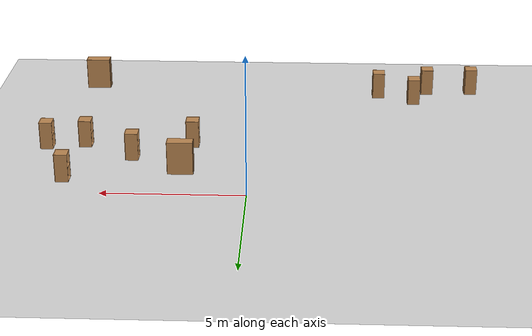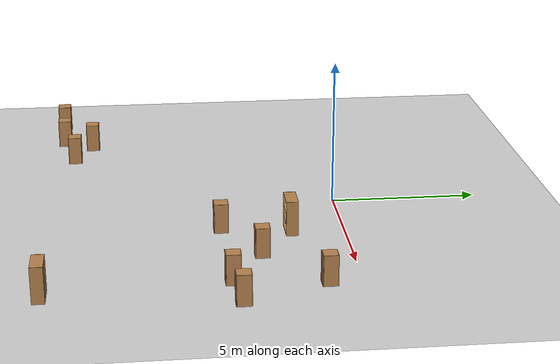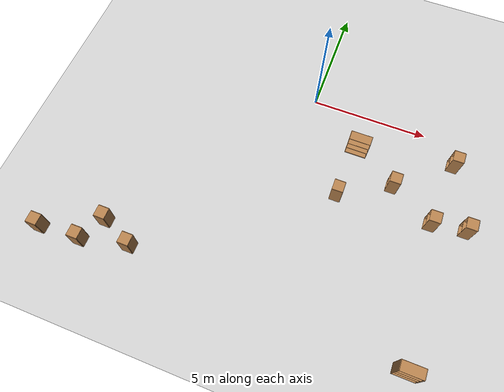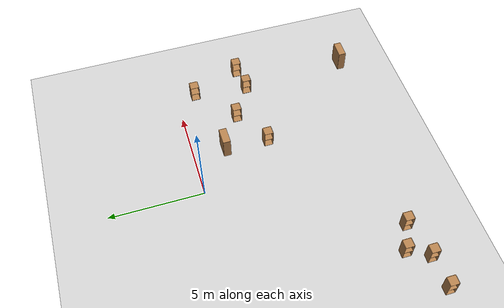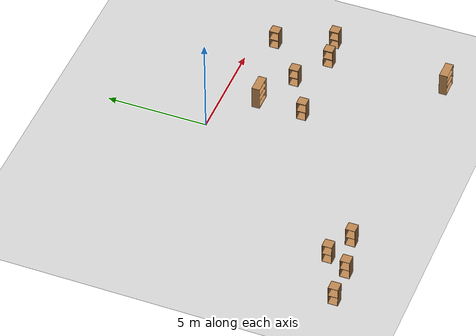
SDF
<sdf version="1.6">
 <world name="default">
  <model name="ground_plane">
   <static>1</static>
   <link name="link">
    <collision name="collision">
     <geometry><plane><normal>0 0 1</normal><size>100 100</size></plane></geometry>
     <surface><friction><ode><mu>100</mu><mu2>50</mu2></ode></friction></surface>
    </collision>
    <visual name="visual">
     <cast_shadows>0</cast_shadows>
     <geometry><plane><normal>0 0 1</normal><size>100 100</size></plane></geometry>
     <material>
      <script><uri>file://media/materials/scripts/gazebo.material</uri><name>Gazebo/Grey</name></script>
     </material>
    </visual>
   </link>
  </model>
  <model name="bookshelf_10">
   <static>1</static>
   <link name="link">
    <inertial><mass>1</mass></inertial>
    <collision name="back">
     <pose>0 0.005 0.6 0 -0 0</pose>
     <geometry><box><size>0.9 0.01 1.2</size></box></geometry>
    </collision>
    <visual name="visual1">
     <pose>0 0.005 0.6 0 -0 0</pose>
     <geometry><box><size>0.9 0.01 1.2</size></box></geometry>
     <material>
      <script><uri>file://media/materials/scripts/gazebo.material</uri><name>Gazebo/Wood</name></script>
     </material>
    </visual>
    <collision name="left_side">
     <pose>0.45 -0.195 0.6 0 -0 0</pose>
     <geometry><box><size>0.02 0.4 1.2</size></box></geometry>
    </collision>
    <visual name="visual2">
     <pose>0.45 -0.195 0.6 0 -0 0</pose>
     <geometry><box><size>0.02 0.4 1.2</size></box></geometry>
     <material>
      <script><uri>file://media/materials/scripts/gazebo.material</uri><name>Gazebo/Wood</name></script>
     </material>
    </visual>
    <collision name="right_side">
     <pose>-0.45 -0.195 0.6 0 -0 0</pose>
     <geometry><box><size>0.02 0.4 1.2</size></box></geometry>
    </collision>
    <visual name="visual3">
     <pose>-0.45 -0.195 0.6 0 -0 0</pose>
     <geometry><box><size>0.02 0.4 1.2</size></box></geometry>
     <material>
      <script><uri>file://media/materials/scripts/gazebo.material</uri><name>Gazebo/Wood</name></script>
     </material>
    </visual>
    <collision name="bottom">
     <pose>0 -0.195 0.03 0 -0 0</pose>
     <geometry><box><size>0.88 0.4 0.06</size></box></geometry>
    </collision>
    <visual name="visual4">
     <pose>0 -0.195 0.03 0 -0 0</pose>
     <geometry><box><size>0.88 0.4 0.06</size></box></geometry>
     <material>
      <script><uri>file://media/materials/scripts/gazebo.material</uri><name>Gazebo/Wood</name></script>
     </material>
    </visual>
    <collision name="top">
     <pose>0 -0.195 1.19 0 -0 0</pose>
     <geometry><box><size>0.88 0.4 0.02</size></box></geometry>
    </collision>
    <visual name="visual5">
     <pose>0 -0.195 1.19 0 -0 0</pose>
     <geometry><box><size>0.88 0.4 0.02</size></box></geometry>
     <material>
      <script><uri>file://media/materials/scripts/gazebo.material</uri><name>Gazebo/Wood</name></script>
     </material>
    </visual>
    <collision name="low_shelf">
     <pose>0 -0.195 0.43 0 -0 0</pose>
     <geometry><box><size>0.88 0.4 0.02</size></box></geometry>
    </collision>
    <visual name="visual6">
     <pose>0 -0.195 0.43 0 -0 0</pose>
     <geometry><box><size>0.88 0.4 0.02</size></box></geometry>
     <material>
      <script><uri>file://media/materials/scripts/gazebo.material</uri><name>Gazebo/Wood</name></script>
     </material>
    </visual>
    <collision name="high_shelf">
     <pose>0 -0.195 0.8 0 -0 0</pose>
     <geometry><box><size>0.88 0.4 0.02</size></box></geometry>
    </collision>
    <visual name="visual7">
     <pose>0 -0.195 0.8 0 -0 0</pose>
     <geometry><box><size>0.88 0.4 0.02</size></box></geometry>
     <material>
      <script><uri>file://media/materials/scripts/gazebo.material</uri><name>Gazebo/Wood</name></script>
     </material>
    </visual>
   </link>
   <pose>2.40634 -1.57691 0 0 -0 0</pose>
  </model>
  <model name="cabinet_4">
   <static>1</static>
   <link name="cabinet_bottom_plate">
    <inertial>
     <pose>0 0 -1 0 -0 0</pose>
     <inertia><ixx>2.05</ixx><ixy>0</ixy><ixz>0</ixz><iyy>2.05</iyy><iyz>0</iyz><izz>2.05</izz></inertia>
     <mass>25</mass>
    </inertial>
    <collision name="cabinet_bottom_plate_geom">
     <pose>0 0 0.01 0 -0 0</pose>
     <geometry><box><size>0.45 0.45 0.02</size></box></geometry>
    </collision>
    <visual name="cabinet_bottom_plate_geom_visual">
     <pose>0 0 0.01 0 -0 0</pose>
     <geometry><box><size>0.45 0.45 0.02</size></box></geometry>
     <material>
      <script><uri>file://media/materials/scripts/gazebo.material</uri><name>Gazebo/Wood</name></script>
     </material>
    </visual>
    <collision name="cabinet_bottom_plate_geom_cabinet_back_plate">
     <pose>0.235 0 0.51 0 -0 0</pose>
     <geometry><box><size>0.02 0.45 1.02</size></box></geometry>
    </collision>
    <visual name="cabinet_bottom_plate_geom_cabinet_back_plate_visual">
     <pose>0.235 0 0.51 0 -0 0</pose>
     <geometry><box><size>0.02 0.45 1.02</size></box></geometry>
     <material>
      <script><uri>file://media/materials/scripts/gazebo.material</uri><name>Gazebo/Wood</name></script>
     </material>
    </visual>
    <collision name="cabinet_bottom_plate_geom_cabinet_left_plate">
     <pose>0 0.235 0.51 0 -0 0</pose>
     <geometry><box><size>0.45 0.02 1.02</size></box></geometry>
    </collision>
    <visual name="cabinet_bottom_plate_geom_cabinet_left_plate_visual">
     <pose>0 0.235 0.51 0 -0 0</pose>
     <geometry><box><size>0.45 0.02 1.02</size></box></geometry>
     <material>
      <script><uri>file://media/materials/scripts/gazebo.material</uri><name>Gazebo/Wood</name></script>
     </material>
    </visual>
    <collision name="cabinet_bottom_plate_geom_cabinet_middle_plate">
     <pose>0 0 0.51 0 -0 0</pose>
     <geometry><box><size>0.45 0.45 0.02</size></box></geometry>
    </collision>
    <visual name="cabinet_bottom_plate_geom_cabinet_middle_plate_visual">
     <pose>0 0 0.51 0 -0 0</pose>
     <geometry><box><size>0.45 0.45 0.02</size></box></geometry>
     <material>
      <script><uri>file://media/materials/scripts/gazebo.material</uri><name>Gazebo/Wood</name></script>
     </material>
    </visual>
    <collision name="cabinet_bottom_plate_geom_cabinet_right_plate">
     <pose>0 -0.235 0.51 0 -0 0</pose>
     <geometry><box><size>0.45 0.02 1.02</size></box></geometry>
    </collision>
    <visual name="cabinet_bottom_plate_geom_cabinet_right_plate_visual">
     <pose>0 -0.235 0.51 0 -0 0</pose>
     <geometry><box><size>0.45 0.02 1.02</size></box></geometry>
     <material>
      <script><uri>file://media/materials/scripts/gazebo.material</uri><name>Gazebo/Wood</name></script>
     </material>
    </visual>
    <collision name="cabinet_bottom_plate_geom_cabinet_top_plate">
     <pose>0 0 1.01 0 -0 0</pose>
     <geometry><box><size>0.45 0.45 0.02</size></box></geometry>
    </collision>
    <visual name="cabinet_bottom_plate_geom_cabinet_top_plate_visual">
     <pose>0 0 1.01 0 -0 0</pose>
     <geometry><box><size>0.45 0.45 0.02</size></box></geometry>
     <material>
      <script><uri>file://media/materials/scripts/gazebo.material</uri><name>Gazebo/Wood</name></script>
     </material>
    </visual>
   </link>
   <pose>2.17512 -4.07654 0 0 -0 0</pose>
  </model>
  <model name="bookshelf_11">
   <static>1</static>
   <link name="link">
    <inertial><mass>1</mass></inertial>
    <collision name="back">
     <pose>0 0.005 0.6 0 -0 0</pose>
     <geometry><box><size>0.9 0.01 1.2</size></box></geometry>
    </collision>
    <visual name="visual1">
     <pose>0 0.005 0.6 0 -0 0</pose>
     <geometry><box><size>0.9 0.01 1.2</size></box></geometry>
     <material>
      <script><uri>file://media/materials/scripts/gazebo.material</uri><name>Gazebo/Wood</name></script>
     </material>
    </visual>
    <collision name="left_side">
     <pose>0.45 -0.195 0.6 0 -0 0</pose>
     <geometry><box><size>0.02 0.4 1.2</size></box></geometry>
    </collision>
    <visual name="visual2">
     <pose>0.45 -0.195 0.6 0 -0 0</pose>
     <geometry><box><size>0.02 0.4 1.2</size></box></geometry>
     <material>
      <script><uri>file://media/materials/scripts/gazebo.material</uri><name>Gazebo/Wood</name></script>
     </material>
    </visual>
    <collision name="right_side">
     <pose>-0.45 -0.195 0.6 0 -0 0</pose>
     <geometry><box><size>0.02 0.4 1.2</size></box></geometry>
    </collision>
    <visual name="visual3">
     <pose>-0.45 -0.195 0.6 0 -0 0</pose>
     <geometry><box><size>0.02 0.4 1.2</size></box></geometry>
     <material>
      <script><uri>file://media/materials/scripts/gazebo.material</uri><name>Gazebo/Wood</name></script>
     </material>
    </visual>
    <collision name="bottom">
     <pose>0 -0.195 0.03 0 -0 0</pose>
     <geometry><box><size>0.88 0.4 0.06</size></box></geometry>
    </collision>
    <visual name="visual4">
     <pose>0 -0.195 0.03 0 -0 0</pose>
     <geometry><box><size>0.88 0.4 0.06</size></box></geometry>
     <material>
      <script><uri>file://media/materials/scripts/gazebo.material</uri><name>Gazebo/Wood</name></script>
     </material>
    </visual>
    <collision name="top">
     <pose>0 -0.195 1.19 0 -0 0</pose>
     <geometry><box><size>0.88 0.4 0.02</size></box></geometry>
    </collision>
    <visual name="visual5">
     <pose>0 -0.195 1.19 0 -0 0</pose>
     <geometry><box><size>0.88 0.4 0.02</size></box></geometry>
     <material>
      <script><uri>file://media/materials/scripts/gazebo.material</uri><name>Gazebo/Wood</name></script>
     </material>
    </visual>
    <collision name="low_shelf">
     <pose>0 -0.195 0.43 0 -0 0</pose>
     <geometry><box><size>0.88 0.4 0.02</size></box></geometry>
    </collision>
    <visual name="visual6">
     <pose>0 -0.195 0.43 0 -0 0</pose>
     <geometry><box><size>0.88 0.4 0.02</size></box></geometry>
     <material>
      <script><uri>file://media/materials/scripts/gazebo.material</uri><name>Gazebo/Wood</name></script>
     </material>
    </visual>
    <collision name="high_shelf">
     <pose>0 -0.195 0.8 0 -0 0</pose>
     <geometry><box><size>0.88 0.4 0.02</size></box></geometry>
    </collision>
    <visual name="visual7">
     <pose>0 -0.195 0.8 0 -0 0</pose>
     <geometry><box><size>0.88 0.4 0.02</size></box></geometry>
     <material>
      <script><uri>file://media/materials/scripts/gazebo.material</uri><name>Gazebo/Wood</name></script>
     </material>
    </visual>
   </link>
   <pose>6.50405 -9.58021 0 0 -0 0</pose>
  </model>
  <model name="cabinet_5">
   <static>1</static>
   <link name="cabinet_bottom_plate">
    <inertial>
     <pose>0 0 -1 0 -0 0</pose>
     <inertia><ixx>2.05</ixx><ixy>0</ixy><ixz>0</ixz><iyy>2.05</iyy><iyz>0</iyz><izz>2.05</izz></inertia>
     <mass>25</mass>
    </inertial>
    <collision name="cabinet_bottom_plate_geom">
     <pose>0 0 0.01 0 -0 0</pose>
     <geometry><box><size>0.45 0.45 0.02</size></box></geometry>
    </collision>
    <visual name="cabinet_bottom_plate_geom_visual">
     <pose>0 0 0.01 0 -0 0</pose>
     <geometry><box><size>0.45 0.45 0.02</size></box></geometry>
     <material>
      <script><uri>file://media/materials/scripts/gazebo.material</uri><name>Gazebo/Wood</name></script>
     </material>
    </visual>
    <collision name="cabinet_bottom_plate_geom_cabinet_back_plate">
     <pose>0.235 0 0.51 0 -0 0</pose>
     <geometry><box><size>0.02 0.45 1.02</size></box></geometry>
    </collision>
    <visual name="cabinet_bottom_plate_geom_cabinet_back_plate_visual">
     <pose>0.235 0 0.51 0 -0 0</pose>
     <geometry><box><size>0.02 0.45 1.02</size></box></geometry>
     <material>
      <script><uri>file://media/materials/scripts/gazebo.material</uri><name>Gazebo/Wood</name></script>
     </material>
    </visual>
    <collision name="cabinet_bottom_plate_geom_cabinet_left_plate">
     <pose>0 0.235 0.51 0 -0 0</pose>
     <geometry><box><size>0.45 0.02 1.02</size></box></geometry>
    </collision>
    <visual name="cabinet_bottom_plate_geom_cabinet_left_plate_visual">
     <pose>0 0.235 0.51 0 -0 0</pose>
     <geometry><box><size>0.45 0.02 1.02</size></box></geometry>
     <material>
      <script><uri>file://media/materials/scripts/gazebo.material</uri><name>Gazebo/Wood</name></script>
     </material>
    </visual>
    <collision name="cabinet_bottom_plate_geom_cabinet_middle_plate">
     <pose>0 0 0.51 0 -0 0</pose>
     <geometry><box><size>0.45 0.45 0.02</size></box></geometry>
    </collision>
    <visual name="cabinet_bottom_plate_geom_cabinet_middle_plate_visual">
     <pose>0 0 0.51 0 -0 0</pose>
     <geometry><box><size>0.45 0.45 0.02</size></box></geometry>
     <material>
      <script><uri>file://media/materials/scripts/gazebo.material</uri><name>Gazebo/Wood</name></script>
     </material>
    </visual>
    <collision name="cabinet_bottom_plate_geom_cabinet_right_plate">
     <pose>0 -0.235 0.51 0 -0 0</pose>
     <geometry><box><size>0.45 0.02 1.02</size></box></geometry>
    </collision>
    <visual name="cabinet_bottom_plate_geom_cabinet_right_plate_visual">
     <pose>0 -0.235 0.51 0 -0 0</pose>
     <geometry><box><size>0.45 0.02 1.02</size></box></geometry>
     <material>
      <script><uri>file://media/materials/scripts/gazebo.material</uri><name>Gazebo/Wood</name></script>
     </material>
    </visual>
    <collision name="cabinet_bottom_plate_geom_cabinet_top_plate">
     <pose>0 0 1.01 0 -0 0</pose>
     <geometry><box><size>0.45 0.45 0.02</size></box></geometry>
    </collision>
    <visual name="cabinet_bottom_plate_geom_cabinet_top_plate_visual">
     <pose>0 0 1.01 0 -0 0</pose>
     <geometry><box><size>0.45 0.45 0.02</size></box></geometry>
     <material>
      <script><uri>file://media/materials/scripts/gazebo.material</uri><name>Gazebo/Wood</name></script>
     </material>
    </visual>
   </link>
   <pose>6.41517 -1.06172 0 0 -0 0</pose>
  </model>
  <model name="cabinet_6">
   <static>1</static>
   <link name="cabinet_bottom_plate">
    <inertial>
     <pose>0 0 -1 0 -0 0</pose>
     <inertia><ixx>2.05</ixx><ixy>0</ixy><ixz>0</ixz><iyy>2.05</iyy><iyz>0</iyz><izz>2.05</izz></inertia>
     <mass>25</mass>
    </inertial>
    <collision name="cabinet_bottom_plate_geom">
     <pose>0 0 0.01 0 -0 0</pose>
     <geometry><box><size>0.45 0.45 0.02</size></box></geometry>
    </collision>
    <visual name="cabinet_bottom_plate_geom_visual">
     <pose>0 0 0.01 0 -0 0</pose>
     <geometry><box><size>0.45 0.45 0.02</size></box></geometry>
     <material>
      <script><uri>file://media/materials/scripts/gazebo.material</uri><name>Gazebo/Wood</name></script>
     </material>
    </visual>
    <collision name="cabinet_bottom_plate_geom_cabinet_back_plate">
     <pose>0.235 0 0.51 0 -0 0</pose>
     <geometry><box><size>0.02 0.45 1.02</size></box></geometry>
    </collision>
    <visual name="cabinet_bottom_plate_geom_cabinet_back_plate_visual">
     <pose>0.235 0 0.51 0 -0 0</pose>
     <geometry><box><size>0.02 0.45 1.02</size></box></geometry>
     <material>
      <script><uri>file://media/materials/scripts/gazebo.material</uri><name>Gazebo/Wood</name></script>
     </material>
    </visual>
    <collision name="cabinet_bottom_plate_geom_cabinet_left_plate">
     <pose>0 0.235 0.51 0 -0 0</pose>
     <geometry><box><size>0.45 0.02 1.02</size></box></geometry>
    </collision>
    <visual name="cabinet_bottom_plate_geom_cabinet_left_plate_visual">
     <pose>0 0.235 0.51 0 -0 0</pose>
     <geometry><box><size>0.45 0.02 1.02</size></box></geometry>
     <material>
      <script><uri>file://media/materials/scripts/gazebo.material</uri><name>Gazebo/Wood</name></script>
     </material>
    </visual>
    <collision name="cabinet_bottom_plate_geom_cabinet_middle_plate">
     <pose>0 0 0.51 0 -0 0</pose>
     <geometry><box><size>0.45 0.45 0.02</size></box></geometry>
    </collision>
    <visual name="cabinet_bottom_plate_geom_cabinet_middle_plate_visual">
     <pose>0 0 0.51 0 -0 0</pose>
     <geometry><box><size>0.45 0.45 0.02</size></box></geometry>
     <material>
      <script><uri>file://media/materials/scripts/gazebo.material</uri><name>Gazebo/Wood</name></script>
     </material>
    </visual>
    <collision name="cabinet_bottom_plate_geom_cabinet_right_plate">
     <pose>0 -0.235 0.51 0 -0 0</pose>
     <geometry><box><size>0.45 0.02 1.02</size></box></geometry>
    </collision>
    <visual name="cabinet_bottom_plate_geom_cabinet_right_plate_visual">
     <pose>0 -0.235 0.51 0 -0 0</pose>
     <geometry><box><size>0.45 0.02 1.02</size></box></geometry>
     <material>
      <script><uri>file://media/materials/scripts/gazebo.material</uri><name>Gazebo/Wood</name></script>
     </material>
    </visual>
    <collision name="cabinet_bottom_plate_geom_cabinet_top_plate">
     <pose>0 0 1.01 0 -0 0</pose>
     <geometry><box><size>0.45 0.45 0.02</size></box></geometry>
    </collision>
    <visual name="cabinet_bottom_plate_geom_cabinet_top_plate_visual">
     <pose>0 0 1.01 0 -0 0</pose>
     <geometry><box><size>0.45 0.45 0.02</size></box></geometry>
     <material>
      <script><uri>file://media/materials/scripts/gazebo.material</uri><name>Gazebo/Wood</name></script>
     </material>
    </visual>
   </link>
   <pose>4.23876 -2.90278 0 0 -0 0</pose>
  </model>
  <model name="cabinet_7">
   <static>1</static>
   <link name="cabinet_bottom_plate">
    <inertial>
     <pose>0 0 -1 0 -0 0</pose>
     <inertia><ixx>2.05</ixx><ixy>0</ixy><ixz>0</ixz><iyy>2.05</iyy><iyz>0</iyz><izz>2.05</izz></inertia>
     <mass>25</mass>
    </inertial>
    <collision name="cabinet_bottom_plate_geom">
     <pose>0 0 0.01 0 -0 0</pose>
     <geometry><box><size>0.45 0.45 0.02</size></box></geometry>
    </collision>
    <visual name="cabinet_bottom_plate_geom_visual">
     <pose>0 0 0.01 0 -0 0</pose>
     <geometry><box><size>0.45 0.45 0.02</size></box></geometry>
     <material>
      <script><uri>file://media/materials/scripts/gazebo.material</uri><name>Gazebo/Wood</name></script>
     </material>
    </visual>
    <collision name="cabinet_bottom_plate_geom_cabinet_back_plate">
     <pose>0.235 0 0.51 0 -0 0</pose>
     <geometry><box><size>0.02 0.45 1.02</size></box></geometry>
    </collision>
    <visual name="cabinet_bottom_plate_geom_cabinet_back_plate_visual">
     <pose>0.235 0 0.51 0 -0 0</pose>
     <geometry><box><size>0.02 0.45 1.02</size></box></geometry>
     <material>
      <script><uri>file://media/materials/scripts/gazebo.material</uri><name>Gazebo/Wood</name></script>
     </material>
    </visual>
    <collision name="cabinet_bottom_plate_geom_cabinet_left_plate">
     <pose>0 0.235 0.51 0 -0 0</pose>
     <geometry><box><size>0.45 0.02 1.02</size></box></geometry>
    </collision>
    <visual name="cabinet_bottom_plate_geom_cabinet_left_plate_visual">
     <pose>0 0.235 0.51 0 -0 0</pose>
     <geometry><box><size>0.45 0.02 1.02</size></box></geometry>
     <material>
      <script><uri>file://media/materials/scripts/gazebo.material</uri><name>Gazebo/Wood</name></script>
     </material>
    </visual>
    <collision name="cabinet_bottom_plate_geom_cabinet_middle_plate">
     <pose>0 0 0.51 0 -0 0</pose>
     <geometry><box><size>0.45 0.45 0.02</size></box></geometry>
    </collision>
    <visual name="cabinet_bottom_plate_geom_cabinet_middle_plate_visual">
     <pose>0 0 0.51 0 -0 0</pose>
     <geometry><box><size>0.45 0.45 0.02</size></box></geometry>
     <material>
      <script><uri>file://media/materials/scripts/gazebo.material</uri><name>Gazebo/Wood</name></script>
     </material>
    </visual>
    <collision name="cabinet_bottom_plate_geom_cabinet_right_plate">
     <pose>0 -0.235 0.51 0 -0 0</pose>
     <geometry><box><size>0.45 0.02 1.02</size></box></geometry>
    </collision>
    <visual name="cabinet_bottom_plate_geom_cabinet_right_plate_visual">
     <pose>0 -0.235 0.51 0 -0 0</pose>
     <geometry><box><size>0.45 0.02 1.02</size></box></geometry>
     <material>
      <script><uri>file://media/materials/scripts/gazebo.material</uri><name>Gazebo/Wood</name></script>
     </material>
    </visual>
    <collision name="cabinet_bottom_plate_geom_cabinet_top_plate">
     <pose>0 0 1.01 0 -0 0</pose>
     <geometry><box><size>0.45 0.45 0.02</size></box></geometry>
    </collision>
    <visual name="cabinet_bottom_plate_geom_cabinet_top_plate_visual">
     <pose>0 0 1.01 0 -0 0</pose>
     <geometry><box><size>0.45 0.45 0.02</size></box></geometry>
     <material>
      <script><uri>file://media/materials/scripts/gazebo.material</uri><name>Gazebo/Wood</name></script>
     </material>
    </visual>
   </link>
   <pose>7.46865 -3.76816 0 0 -0 0</pose>
  </model>
  <model name="cabinet_8">
   <static>1</static>
   <link name="cabinet_bottom_plate">
    <inertial>
     <pose>0 0 -1 0 -0 0</pose>
     <inertia><ixx>2.05</ixx><ixy>0</ixy><ixz>0</ixz><iyy>2.05</iyy><iyz>0</iyz><izz>2.05</izz></inertia>
     <mass>25</mass>
    </inertial>
    <collision name="cabinet_bottom_plate_geom">
     <pose>0 0 0.01 0 -0 0</pose>
     <geometry><box><size>0.45 0.45 0.02</size></box></geometry>
    </collision>
    <visual name="cabinet_bottom_plate_geom_visual">
     <pose>0 0 0.01 0 -0 0</pose>
     <geometry><box><size>0.45 0.45 0.02</size></box></geometry>
     <material>
      <script><uri>file://media/materials/scripts/gazebo.material</uri><name>Gazebo/Wood</name></script>
     </material>
    </visual>
    <collision name="cabinet_bottom_plate_geom_cabinet_back_plate">
     <pose>0.235 0 0.51 0 -0 0</pose>
     <geometry><box><size>0.02 0.45 1.02</size></box></geometry>
    </collision>
    <visual name="cabinet_bottom_plate_geom_cabinet_back_plate_visual">
     <pose>0.235 0 0.51 0 -0 0</pose>
     <geometry><box><size>0.02 0.45 1.02</size></box></geometry>
     <material>
      <script><uri>file://media/materials/scripts/gazebo.material</uri><name>Gazebo/Wood</name></script>
     </material>
    </visual>
    <collision name="cabinet_bottom_plate_geom_cabinet_left_plate">
     <pose>0 0.235 0.51 0 -0 0</pose>
     <geometry><box><size>0.45 0.02 1.02</size></box></geometry>
    </collision>
    <visual name="cabinet_bottom_plate_geom_cabinet_left_plate_visual">
     <pose>0 0.235 0.51 0 -0 0</pose>
     <geometry><box><size>0.45 0.02 1.02</size></box></geometry>
     <material>
      <script><uri>file://media/materials/scripts/gazebo.material</uri><name>Gazebo/Wood</name></script>
     </material>
    </visual>
    <collision name="cabinet_bottom_plate_geom_cabinet_middle_plate">
     <pose>0 0 0.51 0 -0 0</pose>
     <geometry><box><size>0.45 0.45 0.02</size></box></geometry>
    </collision>
    <visual name="cabinet_bottom_plate_geom_cabinet_middle_plate_visual">
     <pose>0 0 0.51 0 -0 0</pose>
     <geometry><box><size>0.45 0.45 0.02</size></box></geometry>
     <material>
      <script><uri>file://media/materials/scripts/gazebo.material</uri><name>Gazebo/Wood</name></script>
     </material>
    </visual>
    <collision name="cabinet_bottom_plate_geom_cabinet_right_plate">
     <pose>0 -0.235 0.51 0 -0 0</pose>
     <geometry><box><size>0.45 0.02 1.02</size></box></geometry>
    </collision>
    <visual name="cabinet_bottom_plate_geom_cabinet_right_plate_visual">
     <pose>0 -0.235 0.51 0 -0 0</pose>
     <geometry><box><size>0.45 0.02 1.02</size></box></geometry>
     <material>
      <script><uri>file://media/materials/scripts/gazebo.material</uri><name>Gazebo/Wood</name></script>
     </material>
    </visual>
    <collision name="cabinet_bottom_plate_geom_cabinet_top_plate">
     <pose>0 0 1.01 0 -0 0</pose>
     <geometry><box><size>0.45 0.45 0.02</size></box></geometry>
    </collision>
    <visual name="cabinet_bottom_plate_geom_cabinet_top_plate_visual">
     <pose>0 0 1.01 0 -0 0</pose>
     <geometry><box><size>0.45 0.45 0.02</size></box></geometry>
     <material>
      <script><uri>file://media/materials/scripts/gazebo.material</uri><name>Gazebo/Wood</name></script>
     </material>
    </visual>
   </link>
   <pose>6.08093 -3.97139 0 0 -0 0</pose>
  </model>
  <model name="cabinet_14">
   <static>1</static>
   <link name="cabinet_bottom_plate">
    <inertial>
     <pose>0 0 -1 0 -0 0</pose>
     <inertia><ixx>2.05</ixx><ixy>0</ixy><ixz>0</ixz><iyy>2.05</iyy><iyz>0</iyz><izz>2.05</izz></inertia>
     <mass>25</mass>
    </inertial>
    <collision name="cabinet_bottom_plate_geom">
     <pose>0 0 0.01 0 -0 0</pose>
     <geometry><box><size>0.45 0.45 0.02</size></box></geometry>
    </collision>
    <visual name="cabinet_bottom_plate_geom_visual">
     <pose>0 0 0.01 0 -0 0</pose>
     <geometry><box><size>0.45 0.45 0.02</size></box></geometry>
     <material>
      <script><uri>file://media/materials/scripts/gazebo.material</uri><name>Gazebo/Wood</name></script>
     </material>
    </visual>
    <collision name="cabinet_bottom_plate_geom_cabinet_back_plate">
     <pose>0.235 0 0.51 0 -0 0</pose>
     <geometry><box><size>0.02 0.45 1.02</size></box></geometry>
    </collision>
    <visual name="cabinet_bottom_plate_geom_cabinet_back_plate_visual">
     <pose>0.235 0 0.51 0 -0 0</pose>
     <geometry><box><size>0.02 0.45 1.02</size></box></geometry>
     <material>
      <script><uri>file://media/materials/scripts/gazebo.material</uri><name>Gazebo/Wood</name></script>
     </material>
    </visual>
    <collision name="cabinet_bottom_plate_geom_cabinet_left_plate">
     <pose>0 0.235 0.51 0 -0 0</pose>
     <geometry><box><size>0.45 0.02 1.02</size></box></geometry>
    </collision>
    <visual name="cabinet_bottom_plate_geom_cabinet_left_plate_visual">
     <pose>0 0.235 0.51 0 -0 0</pose>
     <geometry><box><size>0.45 0.02 1.02</size></box></geometry>
     <material>
      <script><uri>file://media/materials/scripts/gazebo.material</uri><name>Gazebo/Wood</name></script>
     </material>
    </visual>
    <collision name="cabinet_bottom_plate_geom_cabinet_middle_plate">
     <pose>0 0 0.51 0 -0 0</pose>
     <geometry><box><size>0.45 0.45 0.02</size></box></geometry>
    </collision>
    <visual name="cabinet_bottom_plate_geom_cabinet_middle_plate_visual">
     <pose>0 0 0.51 0 -0 0</pose>
     <geometry><box><size>0.45 0.45 0.02</size></box></geometry>
     <material>
      <script><uri>file://media/materials/scripts/gazebo.material</uri><name>Gazebo/Wood</name></script>
     </material>
    </visual>
    <collision name="cabinet_bottom_plate_geom_cabinet_right_plate">
     <pose>0 -0.235 0.51 0 -0 0</pose>
     <geometry><box><size>0.45 0.02 1.02</size></box></geometry>
    </collision>
    <visual name="cabinet_bottom_plate_geom_cabinet_right_plate_visual">
     <pose>0 -0.235 0.51 0 -0 0</pose>
     <geometry><box><size>0.45 0.02 1.02</size></box></geometry>
     <material>
      <script><uri>file://media/materials/scripts/gazebo.material</uri><name>Gazebo/Wood</name></script>
     </material>
    </visual>
    <collision name="cabinet_bottom_plate_geom_cabinet_top_plate">
     <pose>0 0 1.01 0 -0 0</pose>
     <geometry><box><size>0.45 0.45 0.02</size></box></geometry>
    </collision>
    <visual name="cabinet_bottom_plate_geom_cabinet_top_plate_visual">
     <pose>0 0 1.01 0 -0 0</pose>
     <geometry><box><size>0.45 0.45 0.02</size></box></geometry>
     <material>
      <script><uri>file://media/materials/scripts/gazebo.material</uri><name>Gazebo/Wood</name></script>
     </material>
    </visual>
   </link>
   <pose>-8.48726 -9.64591 0 0 -0 0</pose>
  </model>
  <model name="cabinet_15">
   <static>1</static>
   <link name="cabinet_bottom_plate">
    <inertial>
     <pose>0 0 -1 0 -0 0</pose>
     <inertia><ixx>2.05</ixx><ixy>0</ixy><ixz>0</ixz><iyy>2.05</iyy><iyz>0</iyz><izz>2.05</izz></inertia>
     <mass>25</mass>
    </inertial>
    <collision name="cabinet_bottom_plate_geom">
     <pose>0 0 0.01 0 -0 0</pose>
     <geometry><box><size>0.45 0.45 0.02</size></box></geometry>
    </collision>
    <visual name="cabinet_bottom_plate_geom_visual">
     <pose>0 0 0.01 0 -0 0</pose>
     <geometry><box><size>0.45 0.45 0.02</size></box></geometry>
     <material>
      <script><uri>file://media/materials/scripts/gazebo.material</uri><name>Gazebo/Wood</name></script>
     </material>
    </visual>
    <collision name="cabinet_bottom_plate_geom_cabinet_back_plate">
     <pose>0.235 0 0.51 0 -0 0</pose>
     <geometry><box><size>0.02 0.45 1.02</size></box></geometry>
    </collision>
    <visual name="cabinet_bottom_plate_geom_cabinet_back_plate_visual">
     <pose>0.235 0 0.51 0 -0 0</pose>
     <geometry><box><size>0.02 0.45 1.02</size></box></geometry>
     <material>
      <script><uri>file://media/materials/scripts/gazebo.material</uri><name>Gazebo/Wood</name></script>
     </material>
    </visual>
    <collision name="cabinet_bottom_plate_geom_cabinet_left_plate">
     <pose>0 0.235 0.51 0 -0 0</pose>
     <geometry><box><size>0.45 0.02 1.02</size></box></geometry>
    </collision>
    <visual name="cabinet_bottom_plate_geom_cabinet_left_plate_visual">
     <pose>0 0.235 0.51 0 -0 0</pose>
     <geometry><box><size>0.45 0.02 1.02</size></box></geometry>
     <material>
      <script><uri>file://media/materials/scripts/gazebo.material</uri><name>Gazebo/Wood</name></script>
     </material>
    </visual>
    <collision name="cabinet_bottom_plate_geom_cabinet_middle_plate">
     <pose>0 0 0.51 0 -0 0</pose>
     <geometry><box><size>0.45 0.45 0.02</size></box></geometry>
    </collision>
    <visual name="cabinet_bottom_plate_geom_cabinet_middle_plate_visual">
     <pose>0 0 0.51 0 -0 0</pose>
     <geometry><box><size>0.45 0.45 0.02</size></box></geometry>
     <material>
      <script><uri>file://media/materials/scripts/gazebo.material</uri><name>Gazebo/Wood</name></script>
     </material>
    </visual>
    <collision name="cabinet_bottom_plate_geom_cabinet_right_plate">
     <pose>0 -0.235 0.51 0 -0 0</pose>
     <geometry><box><size>0.45 0.02 1.02</size></box></geometry>
    </collision>
    <visual name="cabinet_bottom_plate_geom_cabinet_right_plate_visual">
     <pose>0 -0.235 0.51 0 -0 0</pose>
     <geometry><box><size>0.45 0.02 1.02</size></box></geometry>
     <material>
      <script><uri>file://media/materials/scripts/gazebo.material</uri><name>Gazebo/Wood</name></script>
     </material>
    </visual>
    <collision name="cabinet_bottom_plate_geom_cabinet_top_plate">
     <pose>0 0 1.01 0 -0 0</pose>
     <geometry><box><size>0.45 0.45 0.02</size></box></geometry>
    </collision>
    <visual name="cabinet_bottom_plate_geom_cabinet_top_plate_visual">
     <pose>0 0 1.01 0 -0 0</pose>
     <geometry><box><size>0.45 0.45 0.02</size></box></geometry>
     <material>
      <script><uri>file://media/materials/scripts/gazebo.material</uri><name>Gazebo/Wood</name></script>
     </material>
    </visual>
   </link>
   <pose>-6.73771 -9.56176 0 0 -0 0</pose>
  </model>
  <model name="cabinet_16">
   <static>1</static>
   <link name="cabinet_bottom_plate">
    <inertial>
     <pose>0 0 -1 0 -0 0</pose>
     <inertia><ixx>2.05</ixx><ixy>0</ixy><ixz>0</ixz><iyy>2.05</iyy><iyz>0</iyz><izz>2.05</izz></inertia>
     <mass>25</mass>
    </inertial>
    <collision name="cabinet_bottom_plate_geom">
     <pose>0 0 0.01 0 -0 0</pose>
     <geometry><box><size>0.45 0.45 0.02</size></box></geometry>
    </collision>
    <visual name="cabinet_bottom_plate_geom_visual">
     <pose>0 0 0.01 0 -0 0</pose>
     <geometry><box><size>0.45 0.45 0.02</size></box></geometry>
     <material>
      <script><uri>file://media/materials/scripts/gazebo.material</uri><name>Gazebo/Wood</name></script>
     </material>
    </visual>
    <collision name="cabinet_bottom_plate_geom_cabinet_back_plate">
     <pose>0.235 0 0.51 0 -0 0</pose>
     <geometry><box><size>0.02 0.45 1.02</size></box></geometry>
    </collision>
    <visual name="cabinet_bottom_plate_geom_cabinet_back_plate_visual">
     <pose>0.235 0 0.51 0 -0 0</pose>
     <geometry><box><size>0.02 0.45 1.02</size></box></geometry>
     <material>
      <script><uri>file://media/materials/scripts/gazebo.material</uri><name>Gazebo/Wood</name></script>
     </material>
    </visual>
    <collision name="cabinet_bottom_plate_geom_cabinet_left_plate">
     <pose>0 0.235 0.51 0 -0 0</pose>
     <geometry><box><size>0.45 0.02 1.02</size></box></geometry>
    </collision>
    <visual name="cabinet_bottom_plate_geom_cabinet_left_plate_visual">
     <pose>0 0.235 0.51 0 -0 0</pose>
     <geometry><box><size>0.45 0.02 1.02</size></box></geometry>
     <material>
      <script><uri>file://media/materials/scripts/gazebo.material</uri><name>Gazebo/Wood</name></script>
     </material>
    </visual>
    <collision name="cabinet_bottom_plate_geom_cabinet_middle_plate">
     <pose>0 0 0.51 0 -0 0</pose>
     <geometry><box><size>0.45 0.45 0.02</size></box></geometry>
    </collision>
    <visual name="cabinet_bottom_plate_geom_cabinet_middle_plate_visual">
     <pose>0 0 0.51 0 -0 0</pose>
     <geometry><box><size>0.45 0.45 0.02</size></box></geometry>
     <material>
      <script><uri>file://media/materials/scripts/gazebo.material</uri><name>Gazebo/Wood</name></script>
     </material>
    </visual>
    <collision name="cabinet_bottom_plate_geom_cabinet_right_plate">
     <pose>0 -0.235 0.51 0 -0 0</pose>
     <geometry><box><size>0.45 0.02 1.02</size></box></geometry>
    </collision>
    <visual name="cabinet_bottom_plate_geom_cabinet_right_plate_visual">
     <pose>0 -0.235 0.51 0 -0 0</pose>
     <geometry><box><size>0.45 0.02 1.02</size></box></geometry>
     <material>
      <script><uri>file://media/materials/scripts/gazebo.material</uri><name>Gazebo/Wood</name></script>
     </material>
    </visual>
    <collision name="cabinet_bottom_plate_geom_cabinet_top_plate">
     <pose>0 0 1.01 0 -0 0</pose>
     <geometry><box><size>0.45 0.45 0.02</size></box></geometry>
    </collision>
    <visual name="cabinet_bottom_plate_geom_cabinet_top_plate_visual">
     <pose>0 0 1.01 0 -0 0</pose>
     <geometry><box><size>0.45 0.45 0.02</size></box></geometry>
     <material>
      <script><uri>file://media/materials/scripts/gazebo.material</uri><name>Gazebo/Wood</name></script>
     </material>
    </visual>
   </link>
   <pose>-4.78932 -9.11147 0 0 -0 0</pose>
  </model>
  <model name="cabinet_17">
   <static>1</static>
   <link name="cabinet_bottom_plate">
    <inertial>
     <pose>0 0 -1 0 -0 0</pose>
     <inertia><ixx>2.05</ixx><ixy>0</ixy><ixz>0</ixz><iyy>2.05</iyy><iyz>0</iyz><izz>2.05</izz></inertia>
     <mass>25</mass>
    </inertial>
    <collision name="cabinet_bottom_plate_geom">
     <pose>0 0 0.01 0 -0 0</pose>
     <geometry><box><size>0.45 0.45 0.02</size></box></geometry>
    </collision>
    <visual name="cabinet_bottom_plate_geom_visual">
     <pose>0 0 0.01 0 -0 0</pose>
     <geometry><box><size>0.45 0.45 0.02</size></box></geometry>
     <material>
      <script><uri>file://media/materials/scripts/gazebo.material</uri><name>Gazebo/Wood</name></script>
     </material>
    </visual>
    <collision name="cabinet_bottom_plate_geom_cabinet_back_plate">
     <pose>0.235 0 0.51 0 -0 0</pose>
     <geometry><box><size>0.02 0.45 1.02</size></box></geometry>
    </collision>
    <visual name="cabinet_bottom_plate_geom_cabinet_back_plate_visual">
     <pose>0.235 0 0.51 0 -0 0</pose>
     <geometry><box><size>0.02 0.45 1.02</size></box></geometry>
     <material>
      <script><uri>file://media/materials/scripts/gazebo.material</uri><name>Gazebo/Wood</name></script>
     </material>
    </visual>
    <collision name="cabinet_bottom_plate_geom_cabinet_left_plate">
     <pose>0 0.235 0.51 0 -0 0</pose>
     <geometry><box><size>0.45 0.02 1.02</size></box></geometry>
    </collision>
    <visual name="cabinet_bottom_plate_geom_cabinet_left_plate_visual">
     <pose>0 0.235 0.51 0 -0 0</pose>
     <geometry><box><size>0.45 0.02 1.02</size></box></geometry>
     <material>
      <script><uri>file://media/materials/scripts/gazebo.material</uri><name>Gazebo/Wood</name></script>
     </material>
    </visual>
    <collision name="cabinet_bottom_plate_geom_cabinet_middle_plate">
     <pose>0 0 0.51 0 -0 0</pose>
     <geometry><box><size>0.45 0.45 0.02</size></box></geometry>
    </collision>
    <visual name="cabinet_bottom_plate_geom_cabinet_middle_plate_visual">
     <pose>0 0 0.51 0 -0 0</pose>
     <geometry><box><size>0.45 0.45 0.02</size></box></geometry>
     <material>
      <script><uri>file://media/materials/scripts/gazebo.material</uri><name>Gazebo/Wood</name></script>
     </material>
    </visual>
    <collision name="cabinet_bottom_plate_geom_cabinet_right_plate">
     <pose>0 -0.235 0.51 0 -0 0</pose>
     <geometry><box><size>0.45 0.02 1.02</size></box></geometry>
    </collision>
    <visual name="cabinet_bottom_plate_geom_cabinet_right_plate_visual">
     <pose>0 -0.235 0.51 0 -0 0</pose>
     <geometry><box><size>0.45 0.02 1.02</size></box></geometry>
     <material>
      <script><uri>file://media/materials/scripts/gazebo.material</uri><name>Gazebo/Wood</name></script>
     </material>
    </visual>
    <collision name="cabinet_bottom_plate_geom_cabinet_top_plate">
     <pose>0 0 1.01 0 -0 0</pose>
     <geometry><box><size>0.45 0.45 0.02</size></box></geometry>
    </collision>
    <visual name="cabinet_bottom_plate_geom_cabinet_top_plate_visual">
     <pose>0 0 1.01 0 -0 0</pose>
     <geometry><box><size>0.45 0.45 0.02</size></box></geometry>
     <material>
      <script><uri>file://media/materials/scripts/gazebo.material</uri><name>Gazebo/Wood</name></script>
     </material>
    </visual>
   </link>
   <pose>-6.14367 -8.48139 0 0 -0 0</pose>
  </model>
 </world>
</sdf>
